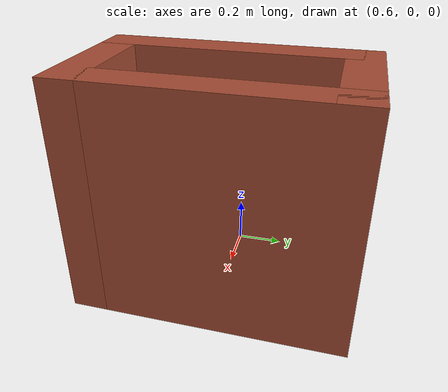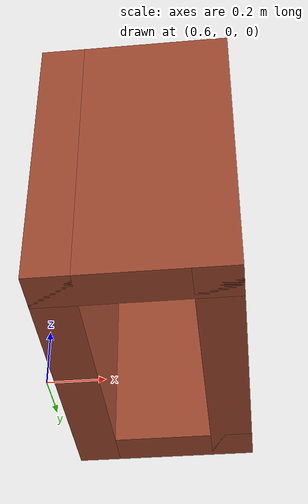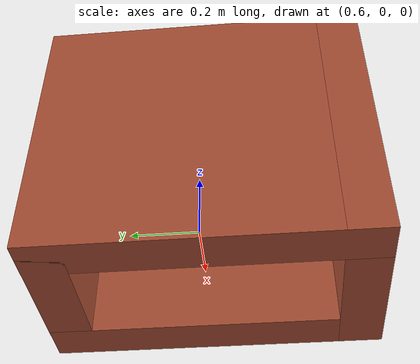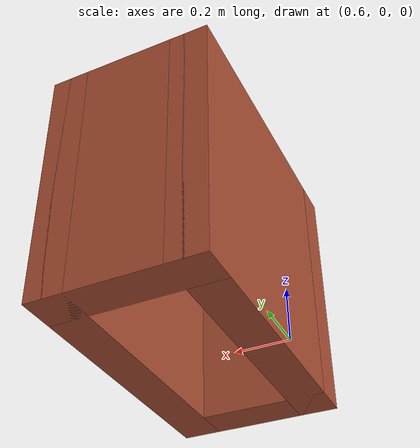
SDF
<?xml version='1.0'?>
<sdf version='1.6'>
  <model name='building'>
    <pose frame=''>0.95 0 0 0 -0 0</pose>
    <link name='Wall_11'>
      <collision name='Wall_11_Collision'>
        <geometry>
          <box>
            <size>0.65 0.15 1</size>
          </box>
        </geometry>
        <pose frame=''>0 0 0.5 0 -0 0</pose>
      </collision>
      <visual name='Wall_11_Visual'>
        <pose frame=''>0 0 0.5 0 -0 0</pose>
        <geometry>
          <box>
            <size>0.65 0.15 1</size>
          </box>
        </geometry>
        <material>
          <script>
            <uri>file://media/materials/scripts/gazebo.material</uri>
            <name>Gazebo/Bricks</name>
          </script>
          <ambient>1 1 1 1</ambient>
        </material>
        <meta>
          <layer>0</layer>
        </meta>
      </visual>
      <pose frame=''>0 -0.5 0 0 -0 3.14159</pose>
    </link>
    <link name='Wall_12'>
      <collision name='Wall_12_Collision'>
        <geometry>
          <box>
            <size>1.15 0.15 1</size>
          </box>
        </geometry>
        <pose frame=''>0 0 0.5 0 -0 0</pose>
      </collision>
      <visual name='Wall_12_Visual'>
        <pose frame=''>0 0 0.5 0 -0 0</pose>
        <geometry>
          <box>
            <size>1.15 0.15 1</size>
          </box>
        </geometry>
        <material>
          <script>
            <uri>file://media/materials/scripts/gazebo.material</uri>
            <name>Gazebo/Bricks</name>
          </script>
          <ambient>1 1 1 1</ambient>
        </material>
        <meta>
          <layer>0</layer>
        </meta>
      </visual>
      <pose frame=''>-0.25 0 0 0 -0 1.5708</pose>
    </link>
    <link name='Wall_13'>
      <collision name='Wall_13_Collision'>
        <geometry>
          <box>
            <size>0.65 0.15 1</size>
          </box>
        </geometry>
        <pose frame=''>0 0 0.5 0 -0 0</pose>
      </collision>
      <visual name='Wall_13_Visual'>
        <pose frame=''>0 0 0.5 0 -0 0</pose>
        <geometry>
          <box>
            <size>0.65 0.15 1</size>
          </box>
        </geometry>
        <material>
          <script>
            <uri>file://media/materials/scripts/gazebo.material</uri>
            <name>Gazebo/Bricks</name>
          </script>
          <ambient>1 1 1 1</ambient>
        </material>
        <meta>
          <layer>0</layer>
        </meta>
      </visual>
      <pose frame=''>0 0.5 0 0 -0 0</pose>
    </link>
    <link name='Wall_14'>
      <collision name='Wall_14_Collision'>
        <geometry>
          <box>
            <size>1.15 0.15 1</size>
          </box>
        </geometry>
        <pose frame=''>0 0 0.5 0 -0 0</pose>
      </collision>
      <visual name='Wall_14_Visual'>
        <pose frame=''>0 0 0.5 0 -0 0</pose>
        <geometry>
          <box>
            <size>1.15 0.15 1</size>
          </box>
        </geometry>
        <material>
          <script>
            <uri>file://media/materials/scripts/gazebo.material</uri>
            <name>Gazebo/Bricks</name>
          </script>
          <ambient>1 1 1 1</ambient>
        </material>
        <meta>
          <layer>0</layer>
        </meta>
      </visual>
      <pose frame=''>0.25 0 0 0 -0 -1.5708</pose>
    </link>
    <static>1</static>
  </model>
</sdf>
